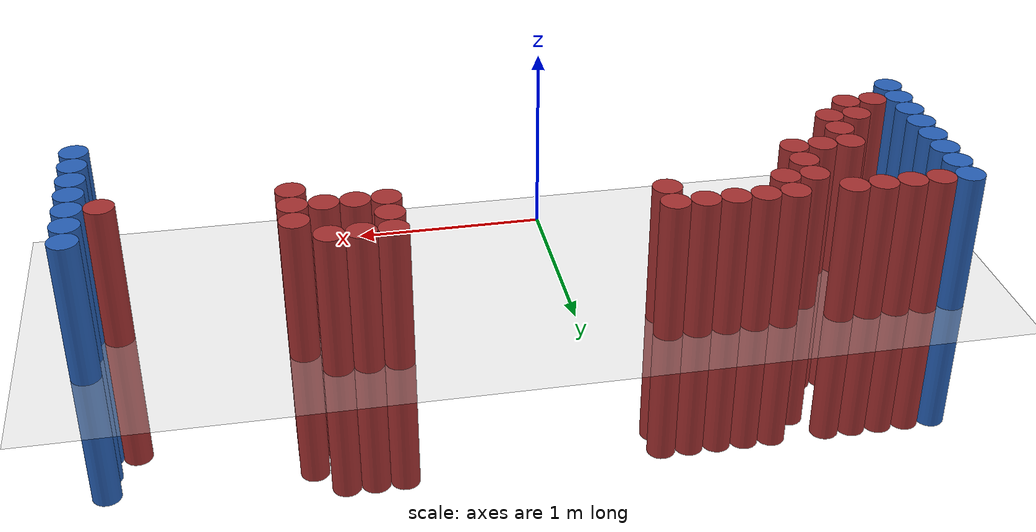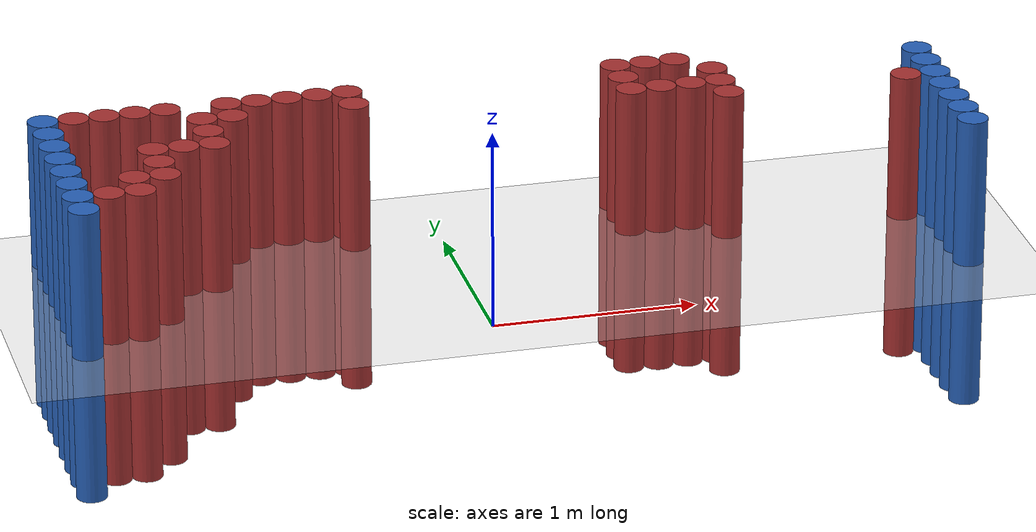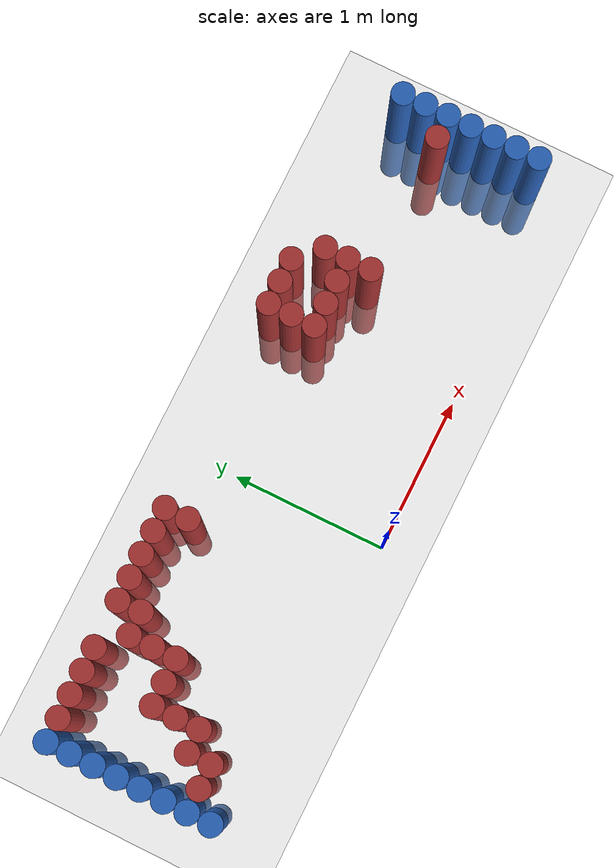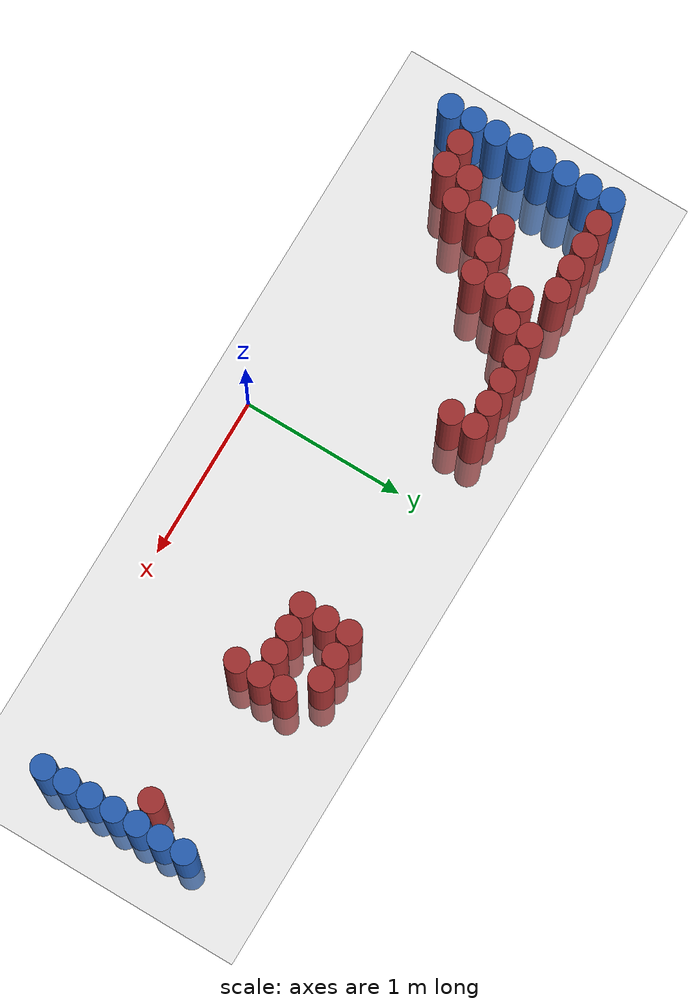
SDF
<sdf version="1.6">
 <world name="default">
  <model name="ground_plane">
   <static>1</static>
   <link name="link">
    <collision name="collision">
     <geometry><plane><normal>0 0 1</normal><size>100 100</size></plane></geometry>
     <surface><friction><ode><mu>100</mu><mu2>50</mu2></ode></friction></surface>
    </collision>
    <visual name="visual">
     <cast_shadows>0</cast_shadows>
     <geometry><plane><normal>0 0 1</normal><size>100 100</size></plane></geometry>
     <material>
      <script><uri>file://media/materials/scripts/gazebo.material</uri><name>Gazebo/Grey</name></script>
     </material>
    </visual>
   </link>
  </model>
  <model name="unit_cylinder_96">
   <static>1</static>
   <pose>-1.925000 0.175000 0.000000 0.000000 0.000000 0.000000</pose>
   <link name="link">
    <inertial>
     <mass>1</mass>
     <inertia><ixx>0.145833</ixx><ixy>0</ixy><ixz>0</ixz><iyy>0.145833</iyy><iyz>0</iyz><izz>0.125</izz></inertia>
    </inertial>
    <collision name="collision">
     <geometry><cylinder><radius>0.075000</radius><length>1.5</length></cylinder></geometry>
    </collision>
    <visual name="visual">
     <geometry><cylinder><radius>0.075000</radius><length>1.5</length></cylinder></geometry>
     <material>
      <ambient>0.152000 0.379000 0.720000 1</ambient>
      <diffuse>0.152000 0.379000 0.720000 1</diffuse>
     </material>
     <material>
      <script><name>Gazebo/Grey</name><uri>file://media/materials/scripts/gazebo.material</uri></script>
     </material>
    </visual>
   </link>
  </model>
  <model name="unit_cylinder_97">
   <static>1</static>
   <pose>-1.925000 0.325000 0.000000 0.000000 0.000000 0.000000</pose>
   <link name="link">
    <inertial>
     <mass>1</mass>
     <inertia><ixx>0.145833</ixx><ixy>0</ixy><ixz>0</ixz><iyy>0.145833</iyy><iyz>0</iyz><izz>0.125</izz></inertia>
    </inertial>
    <collision name="collision">
     <geometry><cylinder><radius>0.075000</radius><length>1.5</length></cylinder></geometry>
    </collision>
    <visual name="visual">
     <geometry><cylinder><radius>0.075000</radius><length>1.5</length></cylinder></geometry>
     <material>
      <ambient>0.152000 0.379000 0.720000 1</ambient>
      <diffuse>0.152000 0.379000 0.720000 1</diffuse>
     </material>
     <material>
      <script><name>Gazebo/Grey</name><uri>file://media/materials/scripts/gazebo.material</uri></script>
     </material>
    </visual>
   </link>
  </model>
  <model name="unit_cylinder_98">
   <static>1</static>
   <pose>-1.925000 0.475000 0.000000 0.000000 0.000000 0.000000</pose>
   <link name="link">
    <inertial>
     <mass>1</mass>
     <inertia><ixx>0.145833</ixx><ixy>0</ixy><ixz>0</ixz><iyy>0.145833</iyy><iyz>0</iyz><izz>0.125</izz></inertia>
    </inertial>
    <collision name="collision">
     <geometry><cylinder><radius>0.075000</radius><length>1.5</length></cylinder></geometry>
    </collision>
    <visual name="visual">
     <geometry><cylinder><radius>0.075000</radius><length>1.5</length></cylinder></geometry>
     <material>
      <ambient>0.152000 0.379000 0.720000 1</ambient>
      <diffuse>0.152000 0.379000 0.720000 1</diffuse>
     </material>
     <material>
      <script><name>Gazebo/Grey</name><uri>file://media/materials/scripts/gazebo.material</uri></script>
     </material>
    </visual>
   </link>
  </model>
  <model name="unit_cylinder_99">
   <static>1</static>
   <pose>-1.925000 0.625000 0.000000 0.000000 0.000000 0.000000</pose>
   <link name="link">
    <inertial>
     <mass>1</mass>
     <inertia><ixx>0.145833</ixx><ixy>0</ixy><ixz>0</ixz><iyy>0.145833</iyy><iyz>0</iyz><izz>0.125</izz></inertia>
    </inertial>
    <collision name="collision">
     <geometry><cylinder><radius>0.075000</radius><length>1.5</length></cylinder></geometry>
    </collision>
    <visual name="visual">
     <geometry><cylinder><radius>0.075000</radius><length>1.5</length></cylinder></geometry>
     <material>
      <ambient>0.152000 0.379000 0.720000 1</ambient>
      <diffuse>0.152000 0.379000 0.720000 1</diffuse>
     </material>
     <material>
      <script><name>Gazebo/Grey</name><uri>file://media/materials/scripts/gazebo.material</uri></script>
     </material>
    </visual>
   </link>
  </model>
  <model name="unit_cylinder_100">
   <static>1</static>
   <pose>-1.925000 0.775000 0.000000 0.000000 0.000000 0.000000</pose>
   <link name="link">
    <inertial>
     <mass>1</mass>
     <inertia><ixx>0.145833</ixx><ixy>0</ixy><ixz>0</ixz><iyy>0.145833</iyy><iyz>0</iyz><izz>0.125</izz></inertia>
    </inertial>
    <collision name="collision">
     <geometry><cylinder><radius>0.075000</radius><length>1.5</length></cylinder></geometry>
    </collision>
    <visual name="visual">
     <geometry><cylinder><radius>0.075000</radius><length>1.5</length></cylinder></geometry>
     <material>
      <ambient>0.152000 0.379000 0.720000 1</ambient>
      <diffuse>0.152000 0.379000 0.720000 1</diffuse>
     </material>
     <material>
      <script><name>Gazebo/Grey</name><uri>file://media/materials/scripts/gazebo.material</uri></script>
     </material>
    </visual>
   </link>
  </model>
  <model name="unit_cylinder_101">
   <static>1</static>
   <pose>-1.925000 0.925000 0.000000 0.000000 0.000000 0.000000</pose>
   <link name="link">
    <inertial>
     <mass>1</mass>
     <inertia><ixx>0.145833</ixx><ixy>0</ixy><ixz>0</ixz><iyy>0.145833</iyy><iyz>0</iyz><izz>0.125</izz></inertia>
    </inertial>
    <collision name="collision">
     <geometry><cylinder><radius>0.075000</radius><length>1.5</length></cylinder></geometry>
    </collision>
    <visual name="visual">
     <geometry><cylinder><radius>0.075000</radius><length>1.5</length></cylinder></geometry>
     <material>
      <ambient>0.152000 0.379000 0.720000 1</ambient>
      <diffuse>0.152000 0.379000 0.720000 1</diffuse>
     </material>
     <material>
      <script><name>Gazebo/Grey</name><uri>file://media/materials/scripts/gazebo.material</uri></script>
     </material>
    </visual>
   </link>
  </model>
  <model name="unit_cylinder_102">
   <static>1</static>
   <pose>-1.925000 1.075000 0.000000 0.000000 0.000000 0.000000</pose>
   <link name="link">
    <inertial>
     <mass>1</mass>
     <inertia><ixx>0.145833</ixx><ixy>0</ixy><ixz>0</ixz><iyy>0.145833</iyy><iyz>0</iyz><izz>0.125</izz></inertia>
    </inertial>
    <collision name="collision">
     <geometry><cylinder><radius>0.075000</radius><length>1.5</length></cylinder></geometry>
    </collision>
    <visual name="visual">
     <geometry><cylinder><radius>0.075000</radius><length>1.5</length></cylinder></geometry>
     <material>
      <ambient>0.152000 0.379000 0.720000 1</ambient>
      <diffuse>0.152000 0.379000 0.720000 1</diffuse>
     </material>
     <material>
      <script><name>Gazebo/Grey</name><uri>file://media/materials/scripts/gazebo.material</uri></script>
     </material>
    </visual>
   </link>
  </model>
  <model name="unit_cylinder_103">
   <static>1</static>
   <pose>-1.925000 1.225000 0.000000 0.000000 0.000000 0.000000</pose>
   <link name="link">
    <inertial>
     <mass>1</mass>
     <inertia><ixx>0.145833</ixx><ixy>0</ixy><ixz>0</ixz><iyy>0.145833</iyy><iyz>0</iyz><izz>0.125</izz></inertia>
    </inertial>
    <collision name="collision">
     <geometry><cylinder><radius>0.075000</radius><length>1.5</length></cylinder></geometry>
    </collision>
    <visual name="visual">
     <geometry><cylinder><radius>0.075000</radius><length>1.5</length></cylinder></geometry>
     <material>
      <ambient>0.152000 0.379000 0.720000 1</ambient>
      <diffuse>0.152000 0.379000 0.720000 1</diffuse>
     </material>
     <material>
      <script><name>Gazebo/Grey</name><uri>file://media/materials/scripts/gazebo.material</uri></script>
     </material>
    </visual>
   </link>
  </model>
  <model name="unit_cylinder_126">
   <static>1</static>
   <pose>-1.775000 0.325000 0.000000 0.000000 0.000000 0.000000</pose>
   <link name="link">
    <inertial>
     <mass>1</mass>
     <inertia><ixx>0.145833</ixx><ixy>0</ixy><ixz>0</ixz><iyy>0.145833</iyy><iyz>0</iyz><izz>0.125</izz></inertia>
    </inertial>
    <collision name="collision">
     <geometry><cylinder><radius>0.075000</radius><length>1.5</length></cylinder></geometry>
    </collision>
    <visual name="visual">
     <geometry><cylinder><radius>0.075000</radius><length>1.5</length></cylinder></geometry>
     <material>
      <ambient>0.648000 0.192000 0.192000 1</ambient>
      <diffuse>0.648000 0.192000 0.192000 1</diffuse>
     </material>
     <material>
      <script><name>Gazebo/Grey</name><uri>file://media/materials/scripts/gazebo.material</uri></script>
     </material>
    </visual>
   </link>
  </model>
  <model name="unit_cylinder_127">
   <static>1</static>
   <pose>-1.775000 1.225000 0.000000 0.000000 0.000000 0.000000</pose>
   <link name="link">
    <inertial>
     <mass>1</mass>
     <inertia><ixx>0.145833</ixx><ixy>0</ixy><ixz>0</ixz><iyy>0.145833</iyy><iyz>0</iyz><izz>0.125</izz></inertia>
    </inertial>
    <collision name="collision">
     <geometry><cylinder><radius>0.075000</radius><length>1.5</length></cylinder></geometry>
    </collision>
    <visual name="visual">
     <geometry><cylinder><radius>0.075000</radius><length>1.5</length></cylinder></geometry>
     <material>
      <ambient>0.648000 0.192000 0.192000 1</ambient>
      <diffuse>0.648000 0.192000 0.192000 1</diffuse>
     </material>
     <material>
      <script><name>Gazebo/Grey</name><uri>file://media/materials/scripts/gazebo.material</uri></script>
     </material>
    </visual>
   </link>
  </model>
  <model name="unit_cylinder_136">
   <static>1</static>
   <pose>-1.625000 0.325000 0.000000 0.000000 0.000000 0.000000</pose>
   <link name="link">
    <inertial>
     <mass>1</mass>
     <inertia><ixx>0.145833</ixx><ixy>0</ixy><ixz>0</ixz><iyy>0.145833</iyy><iyz>0</iyz><izz>0.125</izz></inertia>
    </inertial>
    <collision name="collision">
     <geometry><cylinder><radius>0.075000</radius><length>1.5</length></cylinder></geometry>
    </collision>
    <visual name="visual">
     <geometry><cylinder><radius>0.075000</radius><length>1.5</length></cylinder></geometry>
     <material>
      <ambient>0.648000 0.192000 0.192000 1</ambient>
      <diffuse>0.648000 0.192000 0.192000 1</diffuse>
     </material>
     <material>
      <script><name>Gazebo/Grey</name><uri>file://media/materials/scripts/gazebo.material</uri></script>
     </material>
    </visual>
   </link>
  </model>
  <model name="unit_cylinder_137">
   <static>1</static>
   <pose>-1.625000 0.475000 0.000000 0.000000 0.000000 0.000000</pose>
   <link name="link">
    <inertial>
     <mass>1</mass>
     <inertia><ixx>0.145833</ixx><ixy>0</ixy><ixz>0</ixz><iyy>0.145833</iyy><iyz>0</iyz><izz>0.125</izz></inertia>
    </inertial>
    <collision name="collision">
     <geometry><cylinder><radius>0.075000</radius><length>1.5</length></cylinder></geometry>
    </collision>
    <visual name="visual">
     <geometry><cylinder><radius>0.075000</radius><length>1.5</length></cylinder></geometry>
     <material>
      <ambient>0.648000 0.192000 0.192000 1</ambient>
      <diffuse>0.648000 0.192000 0.192000 1</diffuse>
     </material>
     <material>
      <script><name>Gazebo/Grey</name><uri>file://media/materials/scripts/gazebo.material</uri></script>
     </material>
    </visual>
   </link>
  </model>
  <model name="unit_cylinder_138">
   <static>1</static>
   <pose>-1.625000 1.225000 0.000000 0.000000 0.000000 0.000000</pose>
   <link name="link">
    <inertial>
     <mass>1</mass>
     <inertia><ixx>0.145833</ixx><ixy>0</ixy><ixz>0</ixz><iyy>0.145833</iyy><iyz>0</iyz><izz>0.125</izz></inertia>
    </inertial>
    <collision name="collision">
     <geometry><cylinder><radius>0.075000</radius><length>1.5</length></cylinder></geometry>
    </collision>
    <visual name="visual">
     <geometry><cylinder><radius>0.075000</radius><length>1.5</length></cylinder></geometry>
     <material>
      <ambient>0.648000 0.192000 0.192000 1</ambient>
      <diffuse>0.648000 0.192000 0.192000 1</diffuse>
     </material>
     <material>
      <script><name>Gazebo/Grey</name><uri>file://media/materials/scripts/gazebo.material</uri></script>
     </material>
    </visual>
   </link>
  </model>
  <model name="unit_cylinder_141">
   <static>1</static>
   <pose>-1.475000 0.475000 0.000000 0.000000 0.000000 0.000000</pose>
   <link name="link">
    <inertial>
     <mass>1</mass>
     <inertia><ixx>0.145833</ixx><ixy>0</ixy><ixz>0</ixz><iyy>0.145833</iyy><iyz>0</iyz><izz>0.125</izz></inertia>
    </inertial>
    <collision name="collision">
     <geometry><cylinder><radius>0.075000</radius><length>1.5</length></cylinder></geometry>
    </collision>
    <visual name="visual">
     <geometry><cylinder><radius>0.075000</radius><length>1.5</length></cylinder></geometry>
     <material>
      <ambient>0.648000 0.192000 0.192000 1</ambient>
      <diffuse>0.648000 0.192000 0.192000 1</diffuse>
     </material>
     <material>
      <script><name>Gazebo/Grey</name><uri>file://media/materials/scripts/gazebo.material</uri></script>
     </material>
    </visual>
   </link>
  </model>
  <model name="unit_cylinder_142">
   <static>1</static>
   <pose>-1.475000 0.625000 0.000000 0.000000 0.000000 0.000000</pose>
   <link name="link">
    <inertial>
     <mass>1</mass>
     <inertia><ixx>0.145833</ixx><ixy>0</ixy><ixz>0</ixz><iyy>0.145833</iyy><iyz>0</iyz><izz>0.125</izz></inertia>
    </inertial>
    <collision name="collision">
     <geometry><cylinder><radius>0.075000</radius><length>1.5</length></cylinder></geometry>
    </collision>
    <visual name="visual">
     <geometry><cylinder><radius>0.075000</radius><length>1.5</length></cylinder></geometry>
     <material>
      <ambient>0.648000 0.192000 0.192000 1</ambient>
      <diffuse>0.648000 0.192000 0.192000 1</diffuse>
     </material>
     <material>
      <script><name>Gazebo/Grey</name><uri>file://media/materials/scripts/gazebo.material</uri></script>
     </material>
    </visual>
   </link>
  </model>
  <model name="unit_cylinder_143">
   <static>1</static>
   <pose>-1.475000 0.775000 0.000000 0.000000 0.000000 0.000000</pose>
   <link name="link">
    <inertial>
     <mass>1</mass>
     <inertia><ixx>0.145833</ixx><ixy>0</ixy><ixz>0</ixz><iyy>0.145833</iyy><iyz>0</iyz><izz>0.125</izz></inertia>
    </inertial>
    <collision name="collision">
     <geometry><cylinder><radius>0.075000</radius><length>1.5</length></cylinder></geometry>
    </collision>
    <visual name="visual">
     <geometry><cylinder><radius>0.075000</radius><length>1.5</length></cylinder></geometry>
     <material>
      <ambient>0.648000 0.192000 0.192000 1</ambient>
      <diffuse>0.648000 0.192000 0.192000 1</diffuse>
     </material>
     <material>
      <script><name>Gazebo/Grey</name><uri>file://media/materials/scripts/gazebo.material</uri></script>
     </material>
    </visual>
   </link>
  </model>
  <model name="unit_cylinder_144">
   <static>1</static>
   <pose>-1.475000 1.225000 0.000000 0.000000 0.000000 0.000000</pose>
   <link name="link">
    <inertial>
     <mass>1</mass>
     <inertia><ixx>0.145833</ixx><ixy>0</ixy><ixz>0</ixz><iyy>0.145833</iyy><iyz>0</iyz><izz>0.125</izz></inertia>
    </inertial>
    <collision name="collision">
     <geometry><cylinder><radius>0.075000</radius><length>1.5</length></cylinder></geometry>
    </collision>
    <visual name="visual">
     <geometry><cylinder><radius>0.075000</radius><length>1.5</length></cylinder></geometry>
     <material>
      <ambient>0.648000 0.192000 0.192000 1</ambient>
      <diffuse>0.648000 0.192000 0.192000 1</diffuse>
     </material>
     <material>
      <script><name>Gazebo/Grey</name><uri>file://media/materials/scripts/gazebo.material</uri></script>
     </material>
    </visual>
   </link>
  </model>
  <model name="unit_cylinder_146">
   <static>1</static>
   <pose>-1.325000 0.775000 0.000000 0.000000 0.000000 0.000000</pose>
   <link name="link">
    <inertial>
     <mass>1</mass>
     <inertia><ixx>0.145833</ixx><ixy>0</ixy><ixz>0</ixz><iyy>0.145833</iyy><iyz>0</iyz><izz>0.125</izz></inertia>
    </inertial>
    <collision name="collision">
     <geometry><cylinder><radius>0.075000</radius><length>1.5</length></cylinder></geometry>
    </collision>
    <visual name="visual">
     <geometry><cylinder><radius>0.075000</radius><length>1.5</length></cylinder></geometry>
     <material>
      <ambient>0.648000 0.192000 0.192000 1</ambient>
      <diffuse>0.648000 0.192000 0.192000 1</diffuse>
     </material>
     <material>
      <script><name>Gazebo/Grey</name><uri>file://media/materials/scripts/gazebo.material</uri></script>
     </material>
    </visual>
   </link>
  </model>
  <model name="unit_cylinder_147">
   <static>1</static>
   <pose>-1.325000 1.225000 0.000000 0.000000 0.000000 0.000000</pose>
   <link name="link">
    <inertial>
     <mass>1</mass>
     <inertia><ixx>0.145833</ixx><ixy>0</ixy><ixz>0</ixz><iyy>0.145833</iyy><iyz>0</iyz><izz>0.125</izz></inertia>
    </inertial>
    <collision name="collision">
     <geometry><cylinder><radius>0.075000</radius><length>1.5</length></cylinder></geometry>
    </collision>
    <visual name="visual">
     <geometry><cylinder><radius>0.075000</radius><length>1.5</length></cylinder></geometry>
     <material>
      <ambient>0.648000 0.192000 0.192000 1</ambient>
      <diffuse>0.648000 0.192000 0.192000 1</diffuse>
     </material>
     <material>
      <script><name>Gazebo/Grey</name><uri>file://media/materials/scripts/gazebo.material</uri></script>
     </material>
    </visual>
   </link>
  </model>
  <model name="unit_cylinder_150">
   <static>1</static>
   <pose>-1.175000 0.775000 0.000000 0.000000 0.000000 0.000000</pose>
   <link name="link">
    <inertial>
     <mass>1</mass>
     <inertia><ixx>0.145833</ixx><ixy>0</ixy><ixz>0</ixz><iyy>0.145833</iyy><iyz>0</iyz><izz>0.125</izz></inertia>
    </inertial>
    <collision name="collision">
     <geometry><cylinder><radius>0.075000</radius><length>1.5</length></cylinder></geometry>
    </collision>
    <visual name="visual">
     <geometry><cylinder><radius>0.075000</radius><length>1.5</length></cylinder></geometry>
     <material>
      <ambient>0.648000 0.192000 0.192000 1</ambient>
      <diffuse>0.648000 0.192000 0.192000 1</diffuse>
     </material>
     <material>
      <script><name>Gazebo/Grey</name><uri>file://media/materials/scripts/gazebo.material</uri></script>
     </material>
    </visual>
   </link>
  </model>
  <model name="unit_cylinder_151">
   <static>1</static>
   <pose>-1.175000 0.925000 0.000000 0.000000 0.000000 0.000000</pose>
   <link name="link">
    <inertial>
     <mass>1</mass>
     <inertia><ixx>0.145833</ixx><ixy>0</ixy><ixz>0</ixz><iyy>0.145833</iyy><iyz>0</iyz><izz>0.125</izz></inertia>
    </inertial>
    <collision name="collision">
     <geometry><cylinder><radius>0.075000</radius><length>1.5</length></cylinder></geometry>
    </collision>
    <visual name="visual">
     <geometry><cylinder><radius>0.075000</radius><length>1.5</length></cylinder></geometry>
     <material>
      <ambient>0.648000 0.192000 0.192000 1</ambient>
      <diffuse>0.648000 0.192000 0.192000 1</diffuse>
     </material>
     <material>
      <script><name>Gazebo/Grey</name><uri>file://media/materials/scripts/gazebo.material</uri></script>
     </material>
    </visual>
   </link>
  </model>
  <model name="unit_cylinder_152">
   <static>1</static>
   <pose>-1.175000 1.075000 0.000000 0.000000 0.000000 0.000000</pose>
   <link name="link">
    <inertial>
     <mass>1</mass>
     <inertia><ixx>0.145833</ixx><ixy>0</ixy><ixz>0</ixz><iyy>0.145833</iyy><iyz>0</iyz><izz>0.125</izz></inertia>
    </inertial>
    <collision name="collision">
     <geometry><cylinder><radius>0.075000</radius><length>1.5</length></cylinder></geometry>
    </collision>
    <visual name="visual">
     <geometry><cylinder><radius>0.075000</radius><length>1.5</length></cylinder></geometry>
     <material>
      <ambient>0.648000 0.192000 0.192000 1</ambient>
      <diffuse>0.648000 0.192000 0.192000 1</diffuse>
     </material>
     <material>
      <script><name>Gazebo/Grey</name><uri>file://media/materials/scripts/gazebo.material</uri></script>
     </material>
    </visual>
   </link>
  </model>
  <model name="unit_cylinder_154">
   <static>1</static>
   <pose>-1.025000 1.075000 0.000000 0.000000 0.000000 0.000000</pose>
   <link name="link">
    <inertial>
     <mass>1</mass>
     <inertia><ixx>0.145833</ixx><ixy>0</ixy><ixz>0</ixz><iyy>0.145833</iyy><iyz>0</iyz><izz>0.125</izz></inertia>
    </inertial>
    <collision name="collision">
     <geometry><cylinder><radius>0.075000</radius><length>1.5</length></cylinder></geometry>
    </collision>
    <visual name="visual">
     <geometry><cylinder><radius>0.075000</radius><length>1.5</length></cylinder></geometry>
     <material>
      <ambient>0.648000 0.192000 0.192000 1</ambient>
      <diffuse>0.648000 0.192000 0.192000 1</diffuse>
     </material>
     <material>
      <script><name>Gazebo/Grey</name><uri>file://media/materials/scripts/gazebo.material</uri></script>
     </material>
    </visual>
   </link>
  </model>
  <model name="unit_cylinder_155">
   <static>1</static>
   <pose>-1.025000 1.225000 0.000000 0.000000 0.000000 0.000000</pose>
   <link name="link">
    <inertial>
     <mass>1</mass>
     <inertia><ixx>0.145833</ixx><ixy>0</ixy><ixz>0</ixz><iyy>0.145833</iyy><iyz>0</iyz><izz>0.125</izz></inertia>
    </inertial>
    <collision name="collision">
     <geometry><cylinder><radius>0.075000</radius><length>1.5</length></cylinder></geometry>
    </collision>
    <visual name="visual">
     <geometry><cylinder><radius>0.075000</radius><length>1.5</length></cylinder></geometry>
     <material>
      <ambient>0.648000 0.192000 0.192000 1</ambient>
      <diffuse>0.648000 0.192000 0.192000 1</diffuse>
     </material>
     <material>
      <script><name>Gazebo/Grey</name><uri>file://media/materials/scripts/gazebo.material</uri></script>
     </material>
    </visual>
   </link>
  </model>
  <model name="unit_cylinder_158">
   <static>1</static>
   <pose>-0.875000 1.225000 0.000000 0.000000 0.000000 0.000000</pose>
   <link name="link">
    <inertial>
     <mass>1</mass>
     <inertia><ixx>0.145833</ixx><ixy>0</ixy><ixz>0</ixz><iyy>0.145833</iyy><iyz>0</iyz><izz>0.125</izz></inertia>
    </inertial>
    <collision name="collision">
     <geometry><cylinder><radius>0.075000</radius><length>1.5</length></cylinder></geometry>
    </collision>
    <visual name="visual">
     <geometry><cylinder><radius>0.075000</radius><length>1.5</length></cylinder></geometry>
     <material>
      <ambient>0.648000 0.192000 0.192000 1</ambient>
      <diffuse>0.648000 0.192000 0.192000 1</diffuse>
     </material>
     <material>
      <script><name>Gazebo/Grey</name><uri>file://media/materials/scripts/gazebo.material</uri></script>
     </material>
    </visual>
   </link>
  </model>
  <model name="unit_cylinder_162">
   <static>1</static>
   <pose>-0.725000 1.225000 0.000000 0.000000 0.000000 0.000000</pose>
   <link name="link">
    <inertial>
     <mass>1</mass>
     <inertia><ixx>0.145833</ixx><ixy>0</ixy><ixz>0</ixz><iyy>0.145833</iyy><iyz>0</iyz><izz>0.125</izz></inertia>
    </inertial>
    <collision name="collision">
     <geometry><cylinder><radius>0.075000</radius><length>1.5</length></cylinder></geometry>
    </collision>
    <visual name="visual">
     <geometry><cylinder><radius>0.075000</radius><length>1.5</length></cylinder></geometry>
     <material>
      <ambient>0.648000 0.192000 0.192000 1</ambient>
      <diffuse>0.648000 0.192000 0.192000 1</diffuse>
     </material>
     <material>
      <script><name>Gazebo/Grey</name><uri>file://media/materials/scripts/gazebo.material</uri></script>
     </material>
    </visual>
   </link>
  </model>
  <model name="unit_cylinder_164">
   <static>1</static>
   <pose>-0.575000 1.225000 0.000000 0.000000 0.000000 0.000000</pose>
   <link name="link">
    <inertial>
     <mass>1</mass>
     <inertia><ixx>0.145833</ixx><ixy>0</ixy><ixz>0</ixz><iyy>0.145833</iyy><iyz>0</iyz><izz>0.125</izz></inertia>
    </inertial>
    <collision name="collision">
     <geometry><cylinder><radius>0.075000</radius><length>1.5</length></cylinder></geometry>
    </collision>
    <visual name="visual">
     <geometry><cylinder><radius>0.075000</radius><length>1.5</length></cylinder></geometry>
     <material>
      <ambient>0.648000 0.192000 0.192000 1</ambient>
      <diffuse>0.648000 0.192000 0.192000 1</diffuse>
     </material>
     <material>
      <script><name>Gazebo/Grey</name><uri>file://media/materials/scripts/gazebo.material</uri></script>
     </material>
    </visual>
   </link>
  </model>
  <model name="unit_cylinder_168">
   <static>1</static>
   <pose>-0.425000 1.075000 0.000000 0.000000 0.000000 0.000000</pose>
   <link name="link">
    <inertial>
     <mass>1</mass>
     <inertia><ixx>0.145833</ixx><ixy>0</ixy><ixz>0</ixz><iyy>0.145833</iyy><iyz>0</iyz><izz>0.125</izz></inertia>
    </inertial>
    <collision name="collision">
     <geometry><cylinder><radius>0.075000</radius><length>1.5</length></cylinder></geometry>
    </collision>
    <visual name="visual">
     <geometry><cylinder><radius>0.075000</radius><length>1.5</length></cylinder></geometry>
     <material>
      <ambient>0.648000 0.192000 0.192000 1</ambient>
      <diffuse>0.648000 0.192000 0.192000 1</diffuse>
     </material>
     <material>
      <script><name>Gazebo/Grey</name><uri>file://media/materials/scripts/gazebo.material</uri></script>
     </material>
    </visual>
   </link>
  </model>
  <model name="unit_cylinder_169">
   <static>1</static>
   <pose>-0.425000 1.225000 0.000000 0.000000 0.000000 0.000000</pose>
   <link name="link">
    <inertial>
     <mass>1</mass>
     <inertia><ixx>0.145833</ixx><ixy>0</ixy><ixz>0</ixz><iyy>0.145833</iyy><iyz>0</iyz><izz>0.125</izz></inertia>
    </inertial>
    <collision name="collision">
     <geometry><cylinder><radius>0.075000</radius><length>1.5</length></cylinder></geometry>
    </collision>
    <visual name="visual">
     <geometry><cylinder><radius>0.075000</radius><length>1.5</length></cylinder></geometry>
     <material>
      <ambient>0.648000 0.192000 0.192000 1</ambient>
      <diffuse>0.648000 0.192000 0.192000 1</diffuse>
     </material>
     <material>
      <script><name>Gazebo/Grey</name><uri>file://media/materials/scripts/gazebo.material</uri></script>
     </material>
    </visual>
   </link>
  </model>
  <model name="unit_cylinder_194">
   <static>1</static>
   <pose>0.925000 0.925000 0.000000 0.000000 0.000000 0.000000</pose>
   <link name="link">
    <inertial>
     <mass>1</mass>
     <inertia><ixx>0.145833</ixx><ixy>0</ixy><ixz>0</ixz><iyy>0.145833</iyy><iyz>0</iyz><izz>0.125</izz></inertia>
    </inertial>
    <collision name="collision">
     <geometry><cylinder><radius>0.075000</radius><length>1.5</length></cylinder></geometry>
    </collision>
    <visual name="visual">
     <geometry><cylinder><radius>0.075000</radius><length>1.5</length></cylinder></geometry>
     <material>
      <ambient>0.648000 0.192000 0.192000 1</ambient>
      <diffuse>0.648000 0.192000 0.192000 1</diffuse>
     </material>
     <material>
      <script><name>Gazebo/Grey</name><uri>file://media/materials/scripts/gazebo.material</uri></script>
     </material>
    </visual>
   </link>
  </model>
  <model name="unit_cylinder_195">
   <static>1</static>
   <pose>0.925000 1.075000 0.000000 0.000000 0.000000 0.000000</pose>
   <link name="link">
    <inertial>
     <mass>1</mass>
     <inertia><ixx>0.145833</ixx><ixy>0</ixy><ixz>0</ixz><iyy>0.145833</iyy><iyz>0</iyz><izz>0.125</izz></inertia>
    </inertial>
    <collision name="collision">
     <geometry><cylinder><radius>0.075000</radius><length>1.5</length></cylinder></geometry>
    </collision>
    <visual name="visual">
     <geometry><cylinder><radius>0.075000</radius><length>1.5</length></cylinder></geometry>
     <material>
      <ambient>0.648000 0.192000 0.192000 1</ambient>
      <diffuse>0.648000 0.192000 0.192000 1</diffuse>
     </material>
     <material>
      <script><name>Gazebo/Grey</name><uri>file://media/materials/scripts/gazebo.material</uri></script>
     </material>
    </visual>
   </link>
  </model>
  <model name="unit_cylinder_196">
   <static>1</static>
   <pose>0.925000 1.225000 0.000000 0.000000 0.000000 0.000000</pose>
   <link name="link">
    <inertial>
     <mass>1</mass>
     <inertia><ixx>0.145833</ixx><ixy>0</ixy><ixz>0</ixz><iyy>0.145833</iyy><iyz>0</iyz><izz>0.125</izz></inertia>
    </inertial>
    <collision name="collision">
     <geometry><cylinder><radius>0.075000</radius><length>1.5</length></cylinder></geometry>
    </collision>
    <visual name="visual">
     <geometry><cylinder><radius>0.075000</radius><length>1.5</length></cylinder></geometry>
     <material>
      <ambient>0.648000 0.192000 0.192000 1</ambient>
      <diffuse>0.648000 0.192000 0.192000 1</diffuse>
     </material>
     <material>
      <script><name>Gazebo/Grey</name><uri>file://media/materials/scripts/gazebo.material</uri></script>
     </material>
    </visual>
   </link>
  </model>
  <model name="unit_cylinder_200">
   <static>1</static>
   <pose>1.075000 0.925000 0.000000 0.000000 0.000000 0.000000</pose>
   <link name="link">
    <inertial>
     <mass>1</mass>
     <inertia><ixx>0.145833</ixx><ixy>0</ixy><ixz>0</ixz><iyy>0.145833</iyy><iyz>0</iyz><izz>0.125</izz></inertia>
    </inertial>
    <collision name="collision">
     <geometry><cylinder><radius>0.075000</radius><length>1.5</length></cylinder></geometry>
    </collision>
    <visual name="visual">
     <geometry><cylinder><radius>0.075000</radius><length>1.5</length></cylinder></geometry>
     <material>
      <ambient>0.648000 0.192000 0.192000 1</ambient>
      <diffuse>0.648000 0.192000 0.192000 1</diffuse>
     </material>
     <material>
      <script><name>Gazebo/Grey</name><uri>file://media/materials/scripts/gazebo.material</uri></script>
     </material>
    </visual>
   </link>
  </model>
  <model name="unit_cylinder_201">
   <static>1</static>
   <pose>1.075000 1.225000 0.000000 0.000000 0.000000 0.000000</pose>
   <link name="link">
    <inertial>
     <mass>1</mass>
     <inertia><ixx>0.145833</ixx><ixy>0</ixy><ixz>0</ixz><iyy>0.145833</iyy><iyz>0</iyz><izz>0.125</izz></inertia>
    </inertial>
    <collision name="collision">
     <geometry><cylinder><radius>0.075000</radius><length>1.5</length></cylinder></geometry>
    </collision>
    <visual name="visual">
     <geometry><cylinder><radius>0.075000</radius><length>1.5</length></cylinder></geometry>
     <material>
      <ambient>0.648000 0.192000 0.192000 1</ambient>
      <diffuse>0.648000 0.192000 0.192000 1</diffuse>
     </material>
     <material>
      <script><name>Gazebo/Grey</name><uri>file://media/materials/scripts/gazebo.material</uri></script>
     </material>
    </visual>
   </link>
  </model>
  <model name="unit_cylinder_202">
   <static>1</static>
   <pose>1.225000 0.925000 0.000000 0.000000 0.000000 0.000000</pose>
   <link name="link">
    <inertial>
     <mass>1</mass>
     <inertia><ixx>0.145833</ixx><ixy>0</ixy><ixz>0</ixz><iyy>0.145833</iyy><iyz>0</iyz><izz>0.125</izz></inertia>
    </inertial>
    <collision name="collision">
     <geometry><cylinder><radius>0.075000</radius><length>1.5</length></cylinder></geometry>
    </collision>
    <visual name="visual">
     <geometry><cylinder><radius>0.075000</radius><length>1.5</length></cylinder></geometry>
     <material>
      <ambient>0.648000 0.192000 0.192000 1</ambient>
      <diffuse>0.648000 0.192000 0.192000 1</diffuse>
     </material>
     <material>
      <script><name>Gazebo/Grey</name><uri>file://media/materials/scripts/gazebo.material</uri></script>
     </material>
    </visual>
   </link>
  </model>
  <model name="unit_cylinder_203">
   <static>1</static>
   <pose>1.225000 1.225000 0.000000 0.000000 0.000000 0.000000</pose>
   <link name="link">
    <inertial>
     <mass>1</mass>
     <inertia><ixx>0.145833</ixx><ixy>0</ixy><ixz>0</ixz><iyy>0.145833</iyy><iyz>0</iyz><izz>0.125</izz></inertia>
    </inertial>
    <collision name="collision">
     <geometry><cylinder><radius>0.075000</radius><length>1.5</length></cylinder></geometry>
    </collision>
    <visual name="visual">
     <geometry><cylinder><radius>0.075000</radius><length>1.5</length></cylinder></geometry>
     <material>
      <ambient>0.648000 0.192000 0.192000 1</ambient>
      <diffuse>0.648000 0.192000 0.192000 1</diffuse>
     </material>
     <material>
      <script><name>Gazebo/Grey</name><uri>file://media/materials/scripts/gazebo.material</uri></script>
     </material>
    </visual>
   </link>
  </model>
  <model name="unit_cylinder_206">
   <static>1</static>
   <pose>1.375000 0.775000 0.000000 0.000000 0.000000 0.000000</pose>
   <link name="link">
    <inertial>
     <mass>1</mass>
     <inertia><ixx>0.145833</ixx><ixy>0</ixy><ixz>0</ixz><iyy>0.145833</iyy><iyz>0</iyz><izz>0.125</izz></inertia>
    </inertial>
    <collision name="collision">
     <geometry><cylinder><radius>0.075000</radius><length>1.5</length></cylinder></geometry>
    </collision>
    <visual name="visual">
     <geometry><cylinder><radius>0.075000</radius><length>1.5</length></cylinder></geometry>
     <material>
      <ambient>0.648000 0.192000 0.192000 1</ambient>
      <diffuse>0.648000 0.192000 0.192000 1</diffuse>
     </material>
     <material>
      <script><name>Gazebo/Grey</name><uri>file://media/materials/scripts/gazebo.material</uri></script>
     </material>
    </visual>
   </link>
  </model>
  <model name="unit_cylinder_207">
   <static>1</static>
   <pose>1.375000 0.925000 0.000000 0.000000 0.000000 0.000000</pose>
   <link name="link">
    <inertial>
     <mass>1</mass>
     <inertia><ixx>0.145833</ixx><ixy>0</ixy><ixz>0</ixz><iyy>0.145833</iyy><iyz>0</iyz><izz>0.125</izz></inertia>
    </inertial>
    <collision name="collision">
     <geometry><cylinder><radius>0.075000</radius><length>1.5</length></cylinder></geometry>
    </collision>
    <visual name="visual">
     <geometry><cylinder><radius>0.075000</radius><length>1.5</length></cylinder></geometry>
     <material>
      <ambient>0.648000 0.192000 0.192000 1</ambient>
      <diffuse>0.648000 0.192000 0.192000 1</diffuse>
     </material>
     <material>
      <script><name>Gazebo/Grey</name><uri>file://media/materials/scripts/gazebo.material</uri></script>
     </material>
    </visual>
   </link>
  </model>
  <model name="unit_cylinder_208">
   <static>1</static>
   <pose>1.375000 1.075000 0.000000 0.000000 0.000000 0.000000</pose>
   <link name="link">
    <inertial>
     <mass>1</mass>
     <inertia><ixx>0.145833</ixx><ixy>0</ixy><ixz>0</ixz><iyy>0.145833</iyy><iyz>0</iyz><izz>0.125</izz></inertia>
    </inertial>
    <collision name="collision">
     <geometry><cylinder><radius>0.075000</radius><length>1.5</length></cylinder></geometry>
    </collision>
    <visual name="visual">
     <geometry><cylinder><radius>0.075000</radius><length>1.5</length></cylinder></geometry>
     <material>
      <ambient>0.648000 0.192000 0.192000 1</ambient>
      <diffuse>0.648000 0.192000 0.192000 1</diffuse>
     </material>
     <material>
      <script><name>Gazebo/Grey</name><uri>file://media/materials/scripts/gazebo.material</uri></script>
     </material>
    </visual>
   </link>
  </model>
  <model name="unit_cylinder_243">
   <static>1</static>
   <pose>2.275000 0.775000 0.000000 0.000000 0.000000 0.000000</pose>
   <link name="link">
    <inertial>
     <mass>1</mass>
     <inertia><ixx>0.145833</ixx><ixy>0</ixy><ixz>0</ixz><iyy>0.145833</iyy><iyz>0</iyz><izz>0.125</izz></inertia>
    </inertial>
    <collision name="collision">
     <geometry><cylinder><radius>0.075000</radius><length>1.5</length></cylinder></geometry>
    </collision>
    <visual name="visual">
     <geometry><cylinder><radius>0.075000</radius><length>1.5</length></cylinder></geometry>
     <material>
      <ambient>0.648000 0.192000 0.192000 1</ambient>
      <diffuse>0.648000 0.192000 0.192000 1</diffuse>
     </material>
     <material>
      <script><name>Gazebo/Grey</name><uri>file://media/materials/scripts/gazebo.material</uri></script>
     </material>
    </visual>
   </link>
  </model>
  <model name="unit_cylinder_257">
   <static>1</static>
   <pose>2.425000 0.175000 0.000000 0.000000 0.000000 0.000000</pose>
   <link name="link">
    <inertial>
     <mass>1</mass>
     <inertia><ixx>0.145833</ixx><ixy>0</ixy><ixz>0</ixz><iyy>0.145833</iyy><iyz>0</iyz><izz>0.125</izz></inertia>
    </inertial>
    <collision name="collision">
     <geometry><cylinder><radius>0.075000</radius><length>1.5</length></cylinder></geometry>
    </collision>
    <visual name="visual">
     <geometry><cylinder><radius>0.075000</radius><length>1.5</length></cylinder></geometry>
     <material>
      <ambient>0.152000 0.379000 0.720000 1</ambient>
      <diffuse>0.152000 0.379000 0.720000 1</diffuse>
     </material>
     <material>
      <script><name>Gazebo/Grey</name><uri>file://media/materials/scripts/gazebo.material</uri></script>
     </material>
    </visual>
   </link>
  </model>
  <model name="unit_cylinder_258">
   <static>1</static>
   <pose>2.425000 0.325000 0.000000 0.000000 0.000000 0.000000</pose>
   <link name="link">
    <inertial>
     <mass>1</mass>
     <inertia><ixx>0.145833</ixx><ixy>0</ixy><ixz>0</ixz><iyy>0.145833</iyy><iyz>0</iyz><izz>0.125</izz></inertia>
    </inertial>
    <collision name="collision">
     <geometry><cylinder><radius>0.075000</radius><length>1.5</length></cylinder></geometry>
    </collision>
    <visual name="visual">
     <geometry><cylinder><radius>0.075000</radius><length>1.5</length></cylinder></geometry>
     <material>
      <ambient>0.152000 0.379000 0.720000 1</ambient>
      <diffuse>0.152000 0.379000 0.720000 1</diffuse>
     </material>
     <material>
      <script><name>Gazebo/Grey</name><uri>file://media/materials/scripts/gazebo.material</uri></script>
     </material>
    </visual>
   </link>
  </model>
  <model name="unit_cylinder_259">
   <static>1</static>
   <pose>2.425000 0.475000 0.000000 0.000000 0.000000 0.000000</pose>
   <link name="link">
    <inertial>
     <mass>1</mass>
     <inertia><ixx>0.145833</ixx><ixy>0</ixy><ixz>0</ixz><iyy>0.145833</iyy><iyz>0</iyz><izz>0.125</izz></inertia>
    </inertial>
    <collision name="collision">
     <geometry><cylinder><radius>0.075000</radius><length>1.5</length></cylinder></geometry>
    </collision>
    <visual name="visual">
     <geometry><cylinder><radius>0.075000</radius><length>1.5</length></cylinder></geometry>
     <material>
      <ambient>0.152000 0.379000 0.720000 1</ambient>
      <diffuse>0.152000 0.379000 0.720000 1</diffuse>
     </material>
     <material>
      <script><name>Gazebo/Grey</name><uri>file://media/materials/scripts/gazebo.material</uri></script>
     </material>
    </visual>
   </link>
  </model>
  <model name="unit_cylinder_260">
   <static>1</static>
   <pose>2.425000 0.625000 0.000000 0.000000 0.000000 0.000000</pose>
   <link name="link">
    <inertial>
     <mass>1</mass>
     <inertia><ixx>0.145833</ixx><ixy>0</ixy><ixz>0</ixz><iyy>0.145833</iyy><iyz>0</iyz><izz>0.125</izz></inertia>
    </inertial>
    <collision name="collision">
     <geometry><cylinder><radius>0.075000</radius><length>1.5</length></cylinder></geometry>
    </collision>
    <visual name="visual">
     <geometry><cylinder><radius>0.075000</radius><length>1.5</length></cylinder></geometry>
     <material>
      <ambient>0.152000 0.379000 0.720000 1</ambient>
      <diffuse>0.152000 0.379000 0.720000 1</diffuse>
     </material>
     <material>
      <script><name>Gazebo/Grey</name><uri>file://media/materials/scripts/gazebo.material</uri></script>
     </material>
    </visual>
   </link>
  </model>
  <model name="unit_cylinder_261">
   <static>1</static>
   <pose>2.425000 0.775000 0.000000 0.000000 0.000000 0.000000</pose>
   <link name="link">
    <inertial>
     <mass>1</mass>
     <inertia><ixx>0.145833</ixx><ixy>0</ixy><ixz>0</ixz><iyy>0.145833</iyy><iyz>0</iyz><izz>0.125</izz></inertia>
    </inertial>
    <collision name="collision">
     <geometry><cylinder><radius>0.075000</radius><length>1.5</length></cylinder></geometry>
    </collision>
    <visual name="visual">
     <geometry><cylinder><radius>0.075000</radius><length>1.5</length></cylinder></geometry>
     <material>
      <ambient>0.152000 0.379000 0.720000 1</ambient>
      <diffuse>0.152000 0.379000 0.720000 1</diffuse>
     </material>
     <material>
      <script><name>Gazebo/Grey</name><uri>file://media/materials/scripts/gazebo.material</uri></script>
     </material>
    </visual>
   </link>
  </model>
  <model name="unit_cylinder_262">
   <static>1</static>
   <pose>2.425000 0.925000 0.000000 0.000000 0.000000 0.000000</pose>
   <link name="link">
    <inertial>
     <mass>1</mass>
     <inertia><ixx>0.145833</ixx><ixy>0</ixy><ixz>0</ixz><iyy>0.145833</iyy><iyz>0</iyz><izz>0.125</izz></inertia>
    </inertial>
    <collision name="collision">
     <geometry><cylinder><radius>0.075000</radius><length>1.5</length></cylinder></geometry>
    </collision>
    <visual name="visual">
     <geometry><cylinder><radius>0.075000</radius><length>1.5</length></cylinder></geometry>
     <material>
      <ambient>0.152000 0.379000 0.720000 1</ambient>
      <diffuse>0.152000 0.379000 0.720000 1</diffuse>
     </material>
     <material>
      <script><name>Gazebo/Grey</name><uri>file://media/materials/scripts/gazebo.material</uri></script>
     </material>
    </visual>
   </link>
  </model>
  <model name="unit_cylinder_263">
   <static>1</static>
   <pose>2.425000 1.075000 0.000000 0.000000 0.000000 0.000000</pose>
   <link name="link">
    <inertial>
     <mass>1</mass>
     <inertia><ixx>0.145833</ixx><ixy>0</ixy><ixz>0</ixz><iyy>0.145833</iyy><iyz>0</iyz><izz>0.125</izz></inertia>
    </inertial>
    <collision name="collision">
     <geometry><cylinder><radius>0.075000</radius><length>1.5</length></cylinder></geometry>
    </collision>
    <visual name="visual">
     <geometry><cylinder><radius>0.075000</radius><length>1.5</length></cylinder></geometry>
     <material>
      <ambient>0.152000 0.379000 0.720000 1</ambient>
      <diffuse>0.152000 0.379000 0.720000 1</diffuse>
     </material>
     <material>
      <script><name>Gazebo/Grey</name><uri>file://media/materials/scripts/gazebo.material</uri></script>
     </material>
    </visual>
   </link>
  </model>
 </world>
</sdf>
